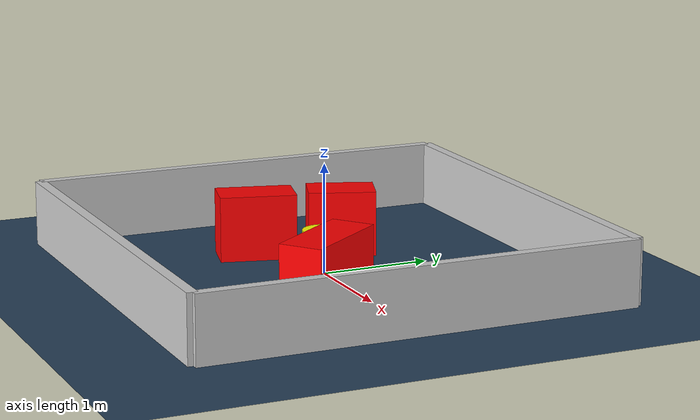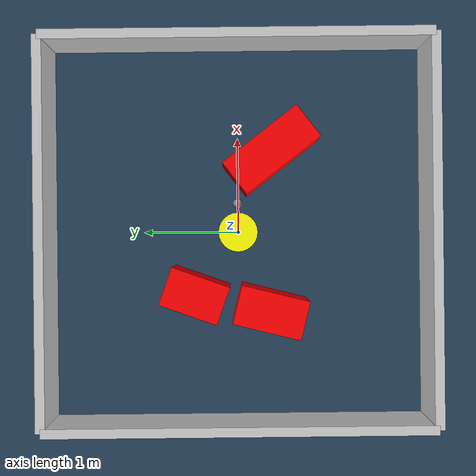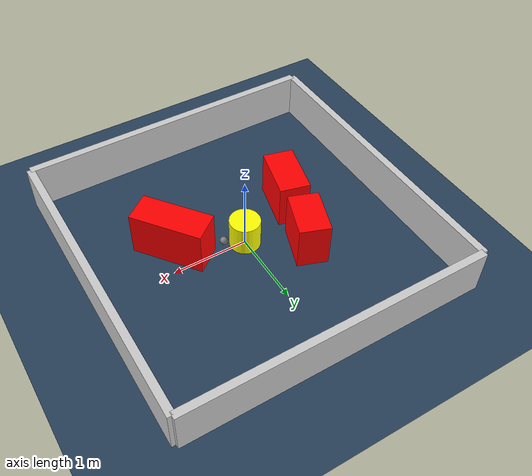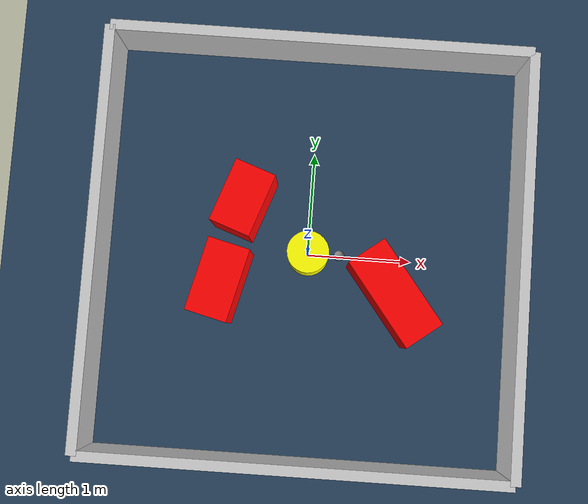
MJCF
<?xml version="1.0" ?>
<mujoco model="generated_environment">
  <option timestep="0.01" integrator="RK4" cone="elliptic"/>
  <default>
    <geom density="1"/>
  </default>
  <asset>
    <texture builtin="gradient" height="3072" rgb1="0.3 0.5 0.7" rgb2="0 0 0" type="skybox" width="512"/>
    <texture builtin="checker" height="300" mark="edge" markrgb="0.8 0.8 0.8" name="groundplane" rgb1="0.2 0.3 0.4" rgb2="0.1 0.2 0.3" type="2d" width="300"/>
    <material name="groundplane" reflectance="0.2" texrepeat="5 5" texture="groundplane" texuniform="true"/>
    <material name="robot" rgba="0.0 1.0 0.0 1"/>
  </asset>
  <worldbody>
    <light dir="0 0 -1" directional="true" pos="0 0 1.5"/>
    <geom condim="4" friction="1.0 0.005 0.001" material="groundplane" name="floor" size="0 0 0.05" type="plane"/>
    <body name="walls">
      <geom name="wall_1" condim="4" pos="-2.0 0.0 0.3" rgba="0.800000011920929 0.800000011920929 0.800000011920929 1.0" size="0.05 2.0 0.3" type="box"/>
      <geom name="wall_2" condim="4" pos="2.0 0.0 0.3" rgba="0.800000011920929 0.800000011920929 0.800000011920929 1.0" size="0.05 2.0 0.3" type="box"/>
      <geom name="wall_3" condim="4" pos="0.0 -2.0 0.3" rgba="0.800000011920929 0.800000011920929 0.800000011920929 1.0" size="2.0 0.05 0.3" type="box"/>
      <geom name="wall_4" condim="4" pos="0.0 2.0 0.3" rgba="0.800000011920929 0.800000011920929 0.800000011920929 1.0" size="2.0 0.05 0.3" type="box"/>
    </body>
    <body name="robot">
      <joint name="joint_x" type="slide" pos="0 0 0" axis="1 0 0"/>
      <joint name="joint_y" type="slide" pos="0 0 0" axis="0 1 0"/>
      <geom name="robot" type="sphere" pos="0.3 0.0 0.2" size="0.05" mass="5." friction="1.0 0.005 0.0001" condim="4" rgba="0.5 0.5 0.5 1.0"/>
      <site name="sensor_ball"/>
    </body>
    <body name="obstacle_movable_1">
      <geom name="obstacle_movable_1" condim="4" pos="0.0 0.0 0.2" euler="0 0 0.0" friction="1.0 0.005 0.001" rgba="1.0 1.0 0.0 1.0" size="0.2 0.2 0.0" type="cylinder" mass="0.1"/>
      <joint type="free"/>
    </body>
    <body name="obstacle_2_static">
      <geom name="obstacle_2_static" condim="4" pos="0.8250974744792412 -0.34237550336916933 0.3" euler="0 0 127.43662739854436" friction="1.0 0.005 0.001" rgba="1 0 0 1" size="0.4720271209911896 0.2 0.3" type="box"/>
    </body>
    <body name="obstacle_3_static">
      <geom name="obstacle_3_static" condim="4" pos="-0.6366085794685123 0.44541578185232633 0.3" euler="0 0 70.32554932842751" friction="1.0 0.005 0.001" rgba="1 0 0 1" size="0.30952706789687795 0.2 0.3" type="box"/>
    </body>
    <body name="obstacle_4_static">
      <geom name="obstacle_4_static" condim="4" pos="-0.8109467351813463 -0.326310754556691 0.3" euler="0 0 75.94780404690636" friction="1.0 0.005 0.001" rgba="1 0 0 1" size="0.35142134809007614 0.2 0.3" type="box"/>
    </body>
  </worldbody>
  <actuator>
    <motor name="actuator_x" joint="joint_x" gear="1" ctrlrange="-1 1"/>
    <motor name="actuator_y" joint="joint_y" gear="1" ctrlrange="-1 1"/>
  </actuator>
</mujoco>
